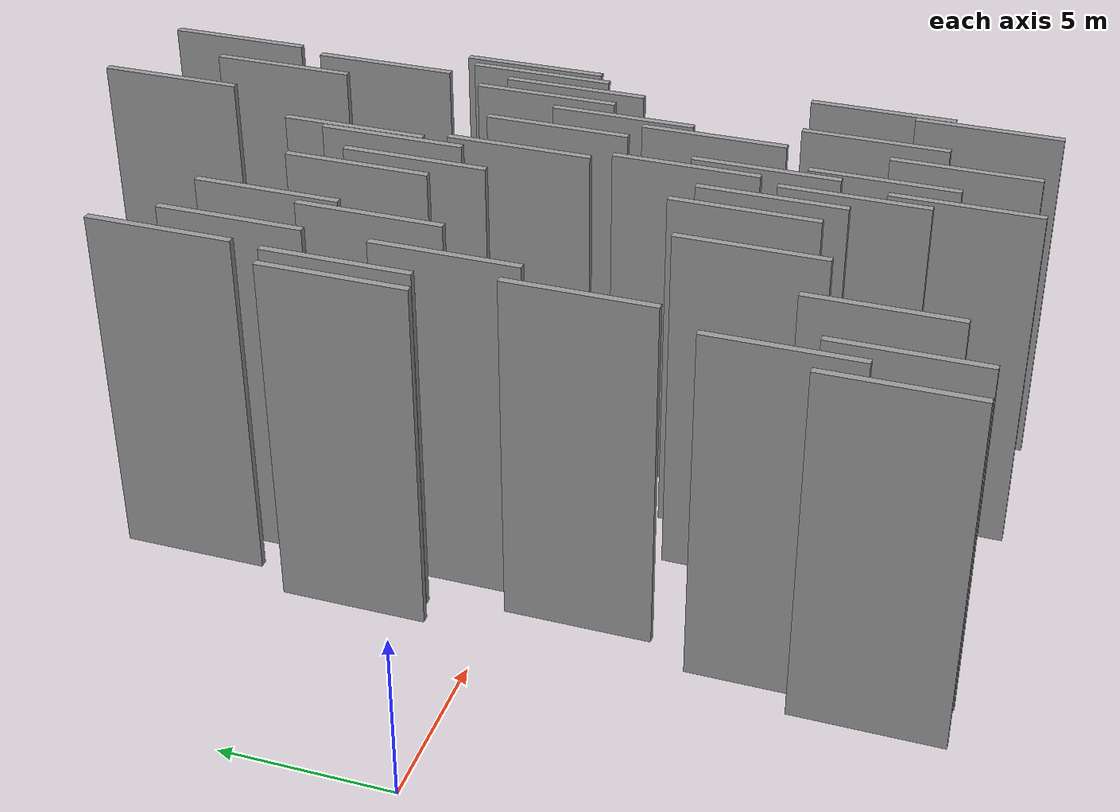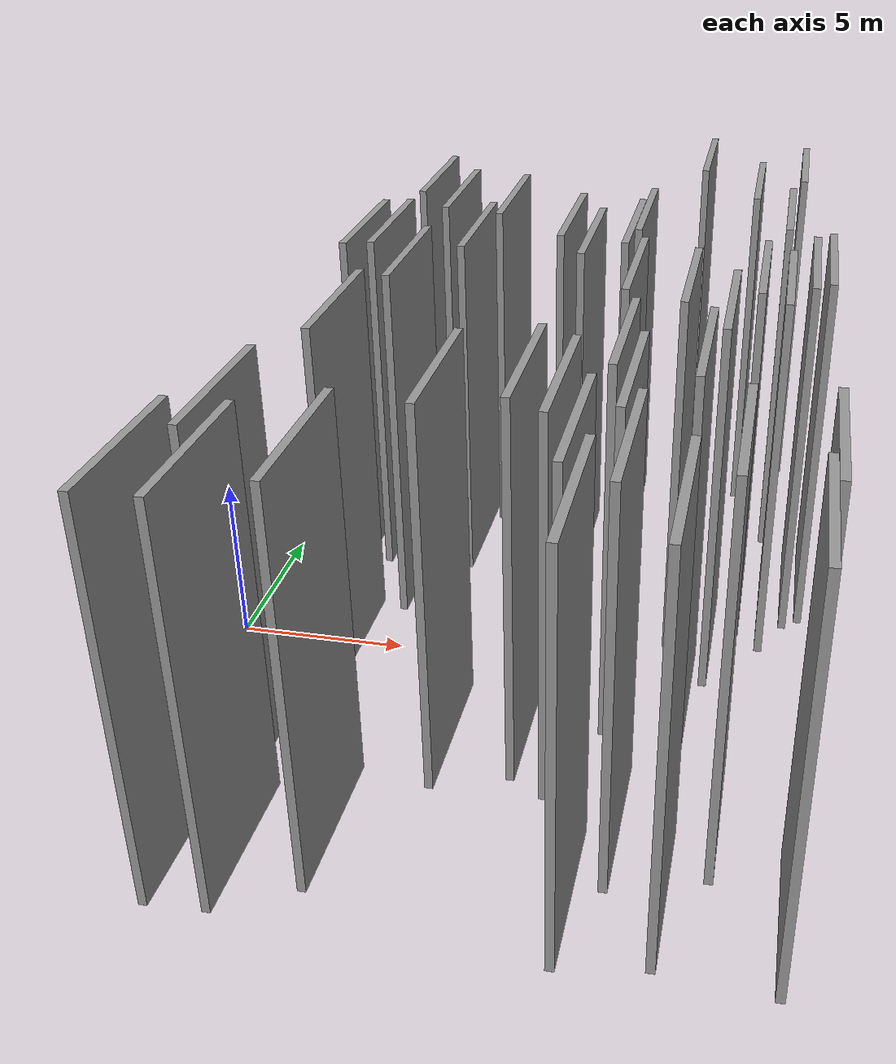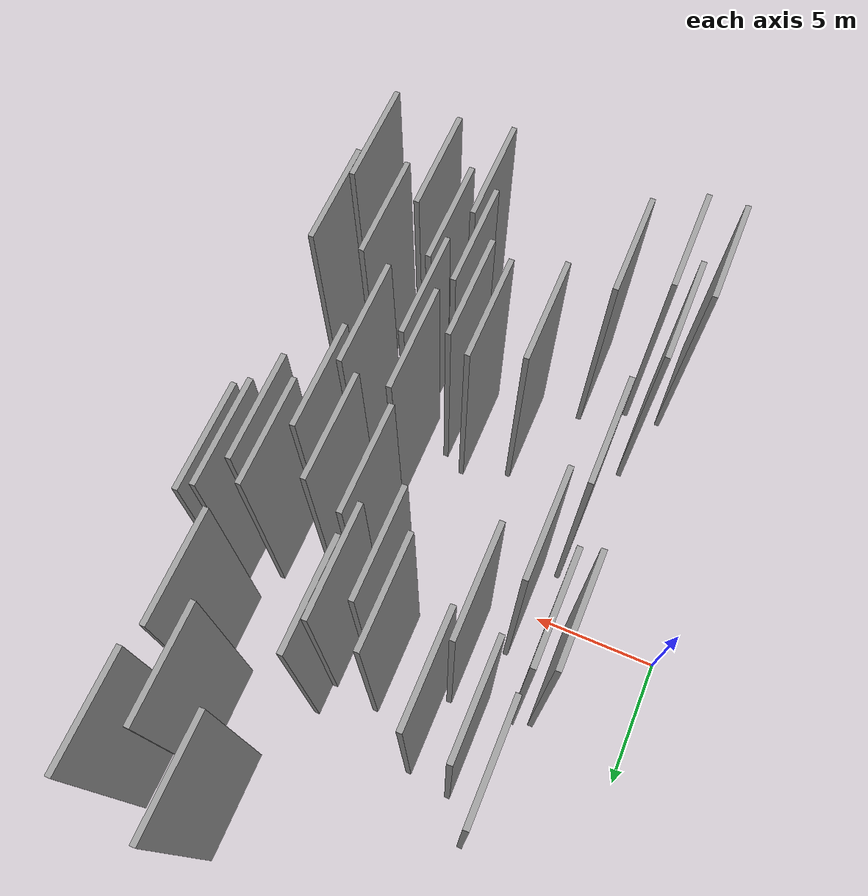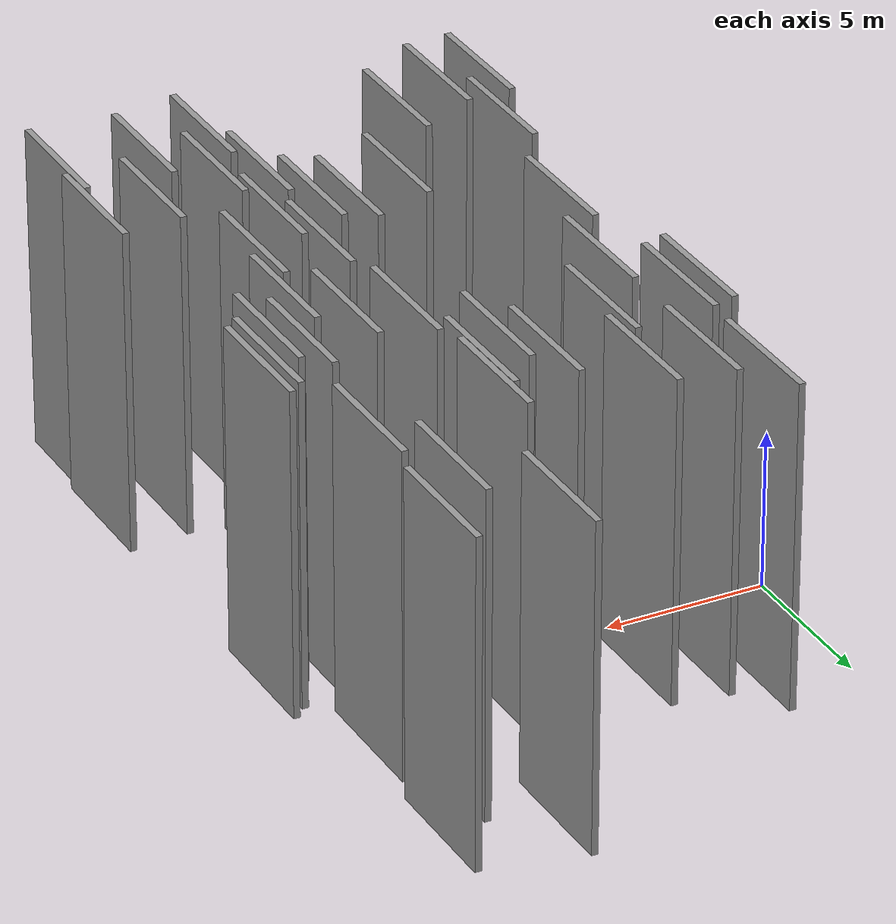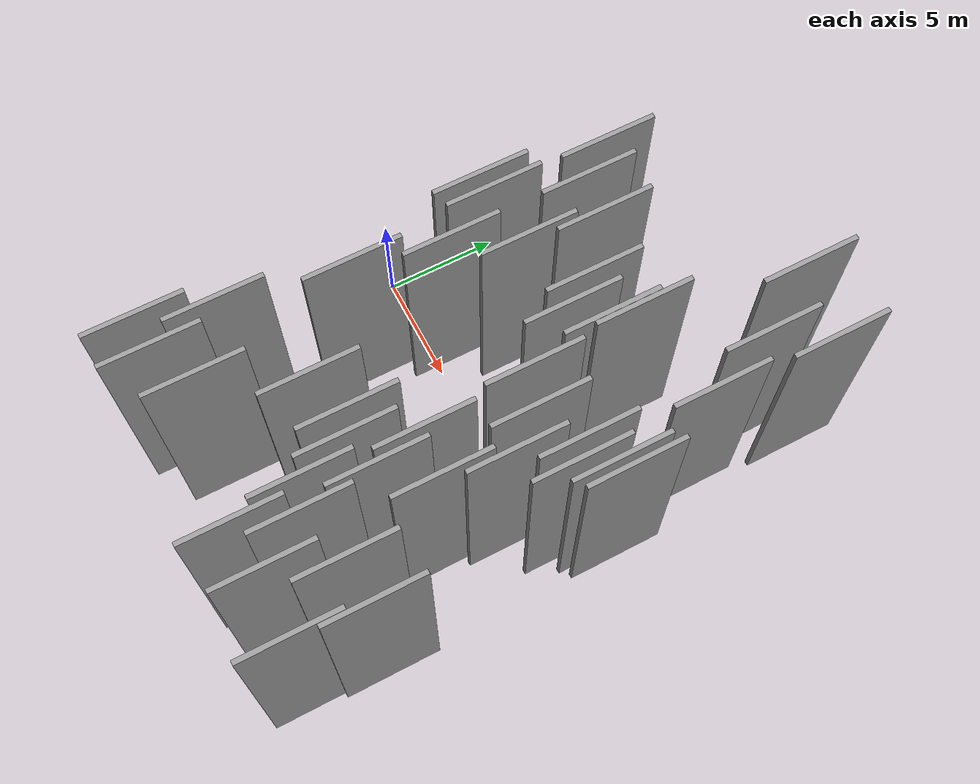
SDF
<sdf version="1.6">
 <world name="default">
  <scene>
   <sky><clouds><speed>12</speed></clouds></sky>
   <ambient>0.4 0.4 0.4 1</ambient>
   <background>0.7 0.7 0.7 1</background>
   <shadows>1</shadows>
  </scene>
  <gravity>0 0 -9.8066</gravity>
  <magnetic_field>6e-06 2.3e-05 -4.2e-05</magnetic_field>
  <physics default="0" name="default_physics" type="ode">
   <ode>
    <solver>
     <type>quick</type>
     <iters>10</iters>
     <sor>1.0</sor>
     <use_dynamic_moi_rescaling>0</use_dynamic_moi_rescaling>
    </solver>
    <constraints>
     <cfm>0</cfm>
     <erp>0.2</erp>
     <contact_max_correcting_vel>100</contact_max_correcting_vel>
     <contact_surface_layer>0.001</contact_surface_layer>
    </constraints>
   </ode>
   <max_step_size>0.004</max_step_size>
   <real_time_factor>1</real_time_factor>
   <real_time_update_rate>250</real_time_update_rate>
  </physics>
  <light name="sun" type="directional">
   <pose>0 0 10 0 0 0</pose>
   <diffuse>0.8 0.8 0.8 1</diffuse>
   <specular>0.2 0.2 0.2 1</specular>
   <attenuation>
    <range>1000</range>
    <constant>0.9</constant>
    <linear>0.01</linear>
    <quadratic>0.001</quadratic>
   </attenuation>
   <direction>-0.5 0.1 -0.9</direction>
  </light>
  <model name="grey_wall_1">
   <static>1</static>
   <pose>3.7994 2.6363 2.5 0.000000 0.000000 1.570796</pose>
   <link name="link">
    <pose>0 0 5.00 0 0 0</pose>
    <collision name="collision"><geometry><box><size>4.00 0.2 10.00</size></box></geometry></collision>
    <visual name="visual">
     <cast_shadows>0</cast_shadows>
     <geometry><box><size>4.00 0.2 10.00</size></box></geometry>
     <material>
      <script>
       <uri>model://grey_wall/materials/scripts</uri>
       <uri>model://grey_wall/materials/textures</uri>
       <name>vrc/grey_wall</name>
      </script>
     </material>
    </visual>
   </link>
  </model>
  <model name="grey_wall_2">
   <static>1</static>
   <pose>15.5786 0.3871 2.5 0.000000 0.000000 1.570796</pose>
   <link name="link">
    <pose>0 0 5.00 0 0 0</pose>
    <collision name="collision"><geometry><box><size>4.00 0.2 10.00</size></box></geometry></collision>
    <visual name="visual">
     <cast_shadows>0</cast_shadows>
     <geometry><box><size>4.00 0.2 10.00</size></box></geometry>
     <material>
      <script>
       <uri>model://grey_wall/materials/scripts</uri>
       <uri>model://grey_wall/materials/textures</uri>
       <name>vrc/grey_wall</name>
      </script>
     </material>
    </visual>
   </link>
  </model>
  <model name="grey_wall_3">
   <static>1</static>
   <pose>10.0864 -5.8652 2.5 0.000000 0.000000 1.570796</pose>
   <link name="link">
    <pose>0 0 5.00 0 0 0</pose>
    <collision name="collision"><geometry><box><size>4.00 0.2 10.00</size></box></geometry></collision>
    <visual name="visual">
     <cast_shadows>0</cast_shadows>
     <geometry><box><size>4.00 0.2 10.00</size></box></geometry>
     <material>
      <script>
       <uri>model://grey_wall/materials/scripts</uri>
       <uri>model://grey_wall/materials/textures</uri>
       <name>vrc/grey_wall</name>
      </script>
     </material>
    </visual>
   </link>
  </model>
  <model name="grey_wall_4">
   <static>1</static>
   <pose>16.6024 1.9470 2.5 0.000000 0.000000 1.570796</pose>
   <link name="link">
    <pose>0 0 5.00 0 0 0</pose>
    <collision name="collision"><geometry><box><size>4.00 0.2 10.00</size></box></geometry></collision>
    <visual name="visual">
     <cast_shadows>0</cast_shadows>
     <geometry><box><size>4.00 0.2 10.00</size></box></geometry>
     <material>
      <script>
       <uri>model://grey_wall/materials/scripts</uri>
       <uri>model://grey_wall/materials/textures</uri>
       <name>vrc/grey_wall</name>
      </script>
     </material>
    </visual>
   </link>
  </model>
  <model name="grey_wall_5">
   <static>1</static>
   <pose>16.5574 -11.0055 2.5 0.000000 0.000000 1.570796</pose>
   <link name="link">
    <pose>0 0 5.00 0 0 0</pose>
    <collision name="collision"><geometry><box><size>4.00 0.2 10.00</size></box></geometry></collision>
    <visual name="visual">
     <cast_shadows>0</cast_shadows>
     <geometry><box><size>4.00 0.2 10.00</size></box></geometry>
     <material>
      <script>
       <uri>model://grey_wall/materials/scripts</uri>
       <uri>model://grey_wall/materials/textures</uri>
       <name>vrc/grey_wall</name>
      </script>
     </material>
    </visual>
   </link>
  </model>
  <model name="grey_wall_6">
   <static>1</static>
   <pose>5.6408 0.4742 2.5 0.000000 0.000000 1.570796</pose>
   <link name="link">
    <pose>0 0 5.00 0 0 0</pose>
    <collision name="collision"><geometry><box><size>4.00 0.2 10.00</size></box></geometry></collision>
    <visual name="visual">
     <cast_shadows>0</cast_shadows>
     <geometry><box><size>4.00 0.2 10.00</size></box></geometry>
     <material>
      <script>
       <uri>model://grey_wall/materials/scripts</uri>
       <uri>model://grey_wall/materials/textures</uri>
       <name>vrc/grey_wall</name>
      </script>
     </material>
    </visual>
   </link>
  </model>
  <model name="grey_wall_7">
   <static>1</static>
   <pose>11.9720 -3.8224 2.5 0.000000 0.000000 1.570796</pose>
   <link name="link">
    <pose>0 0 5.00 0 0 0</pose>
    <collision name="collision"><geometry><box><size>4.00 0.2 10.00</size></box></geometry></collision>
    <visual name="visual">
     <cast_shadows>0</cast_shadows>
     <geometry><box><size>4.00 0.2 10.00</size></box></geometry>
     <material>
      <script>
       <uri>model://grey_wall/materials/scripts</uri>
       <uri>model://grey_wall/materials/textures</uri>
       <name>vrc/grey_wall</name>
      </script>
     </material>
    </visual>
   </link>
  </model>
  <model name="grey_wall_8">
   <static>1</static>
   <pose>14.9060 1.0273 2.5 0.000000 0.000000 1.570796</pose>
   <link name="link">
    <pose>0 0 5.00 0 0 0</pose>
    <collision name="collision"><geometry><box><size>4.00 0.2 10.00</size></box></geometry></collision>
    <visual name="visual">
     <cast_shadows>0</cast_shadows>
     <geometry><box><size>4.00 0.2 10.00</size></box></geometry>
     <material>
      <script>
       <uri>model://grey_wall/materials/scripts</uri>
       <uri>model://grey_wall/materials/textures</uri>
       <name>vrc/grey_wall</name>
      </script>
     </material>
    </visual>
   </link>
  </model>
  <model name="grey_wall_9">
   <static>1</static>
   <pose>12.4231 -5.8423 2.5 0.000000 0.000000 1.570796</pose>
   <link name="link">
    <pose>0 0 5.00 0 0 0</pose>
    <collision name="collision"><geometry><box><size>4.00 0.2 10.00</size></box></geometry></collision>
    <visual name="visual">
     <cast_shadows>0</cast_shadows>
     <geometry><box><size>4.00 0.2 10.00</size></box></geometry>
     <material>
      <script>
       <uri>model://grey_wall/materials/scripts</uri>
       <uri>model://grey_wall/materials/textures</uri>
       <name>vrc/grey_wall</name>
      </script>
     </material>
    </visual>
   </link>
  </model>
  <model name="grey_wall_10">
   <static>1</static>
   <pose>4.6987 -11.0254 2.5 0.000000 0.000000 1.570796</pose>
   <link name="link">
    <pose>0 0 5.00 0 0 0</pose>
    <collision name="collision"><geometry><box><size>4.00 0.2 10.00</size></box></geometry></collision>
    <visual name="visual">
     <cast_shadows>0</cast_shadows>
     <geometry><box><size>4.00 0.2 10.00</size></box></geometry>
     <material>
      <script>
       <uri>model://grey_wall/materials/scripts</uri>
       <uri>model://grey_wall/materials/textures</uri>
       <name>vrc/grey_wall</name>
      </script>
     </material>
    </visual>
   </link>
  </model>
  <model name="grey_wall_11">
   <static>1</static>
   <pose>15.4312 6.0765 2.5 0.000000 0.000000 1.570796</pose>
   <link name="link">
    <pose>0 0 5.00 0 0 0</pose>
    <collision name="collision"><geometry><box><size>4.00 0.2 10.00</size></box></geometry></collision>
    <visual name="visual">
     <cast_shadows>0</cast_shadows>
     <geometry><box><size>4.00 0.2 10.00</size></box></geometry>
     <material>
      <script>
       <uri>model://grey_wall/materials/scripts</uri>
       <uri>model://grey_wall/materials/textures</uri>
       <name>vrc/grey_wall</name>
      </script>
     </material>
    </visual>
   </link>
  </model>
  <model name="grey_wall_12">
   <static>1</static>
   <pose>14.2291 -1.4063 2.5 0.000000 0.000000 1.570796</pose>
   <link name="link">
    <pose>0 0 5.00 0 0 0</pose>
    <collision name="collision"><geometry><box><size>4.00 0.2 10.00</size></box></geometry></collision>
    <visual name="visual">
     <cast_shadows>0</cast_shadows>
     <geometry><box><size>4.00 0.2 10.00</size></box></geometry>
     <material>
      <script>
       <uri>model://grey_wall/materials/scripts</uri>
       <uri>model://grey_wall/materials/textures</uri>
       <name>vrc/grey_wall</name>
      </script>
     </material>
    </visual>
   </link>
  </model>
  <model name="grey_wall_13">
   <static>1</static>
   <pose>4.0524 -8.2985 2.5 0.000000 0.000000 1.570796</pose>
   <link name="link">
    <pose>0 0 5.00 0 0 0</pose>
    <collision name="collision"><geometry><box><size>4.00 0.2 10.00</size></box></geometry></collision>
    <visual name="visual">
     <cast_shadows>0</cast_shadows>
     <geometry><box><size>4.00 0.2 10.00</size></box></geometry>
     <material>
      <script>
       <uri>model://grey_wall/materials/scripts</uri>
       <uri>model://grey_wall/materials/textures</uri>
       <name>vrc/grey_wall</name>
      </script>
     </material>
    </visual>
   </link>
  </model>
  <model name="grey_wall_14">
   <static>1</static>
   <pose>6.4614 -10.0986 2.5 0.000000 0.000000 1.570796</pose>
   <link name="link">
    <pose>0 0 5.00 0 0 0</pose>
    <collision name="collision"><geometry><box><size>4.00 0.2 10.00</size></box></geometry></collision>
    <visual name="visual">
     <cast_shadows>0</cast_shadows>
     <geometry><box><size>4.00 0.2 10.00</size></box></geometry>
     <material>
      <script>
       <uri>model://grey_wall/materials/scripts</uri>
       <uri>model://grey_wall/materials/textures</uri>
       <name>vrc/grey_wall</name>
      </script>
     </material>
    </visual>
   </link>
  </model>
  <model name="grey_wall_15">
   <static>1</static>
   <pose>14.9442 -8.2278 2.5 0.000000 0.000000 1.570796</pose>
   <link name="link">
    <pose>0 0 5.00 0 0 0</pose>
    <collision name="collision"><geometry><box><size>4.00 0.2 10.00</size></box></geometry></collision>
    <visual name="visual">
     <cast_shadows>0</cast_shadows>
     <geometry><box><size>4.00 0.2 10.00</size></box></geometry>
     <material>
      <script>
       <uri>model://grey_wall/materials/scripts</uri>
       <uri>model://grey_wall/materials/textures</uri>
       <name>vrc/grey_wall</name>
      </script>
     </material>
    </visual>
   </link>
  </model>
  <model name="grey_wall_16">
   <static>1</static>
   <pose>11.6333 0.6828 2.5 0.000000 0.000000 1.570796</pose>
   <link name="link">
    <pose>0 0 5.00 0 0 0</pose>
    <collision name="collision"><geometry><box><size>4.00 0.2 10.00</size></box></geometry></collision>
    <visual name="visual">
     <cast_shadows>0</cast_shadows>
     <geometry><box><size>4.00 0.2 10.00</size></box></geometry>
     <material>
      <script>
       <uri>model://grey_wall/materials/scripts</uri>
       <uri>model://grey_wall/materials/textures</uri>
       <name>vrc/grey_wall</name>
      </script>
     </material>
    </visual>
   </link>
  </model>
  <model name="grey_wall_17">
   <static>1</static>
   <pose>5.6771 6.2340 2.5 0.000000 0.000000 1.570796</pose>
   <link name="link">
    <pose>0 0 5.00 0 0 0</pose>
    <collision name="collision"><geometry><box><size>4.00 0.2 10.00</size></box></geometry></collision>
    <visual name="visual">
     <cast_shadows>0</cast_shadows>
     <geometry><box><size>4.00 0.2 10.00</size></box></geometry>
     <material>
      <script>
       <uri>model://grey_wall/materials/scripts</uri>
       <uri>model://grey_wall/materials/textures</uri>
       <name>vrc/grey_wall</name>
      </script>
     </material>
    </visual>
   </link>
  </model>
  <model name="grey_wall_18">
   <static>1</static>
   <pose>11.6100 -8.3505 2.5 0.000000 0.000000 1.570796</pose>
   <link name="link">
    <pose>0 0 5.00 0 0 0</pose>
    <collision name="collision"><geometry><box><size>4.00 0.2 10.00</size></box></geometry></collision>
    <visual name="visual">
     <cast_shadows>0</cast_shadows>
     <geometry><box><size>4.00 0.2 10.00</size></box></geometry>
     <material>
      <script>
       <uri>model://grey_wall/materials/scripts</uri>
       <uri>model://grey_wall/materials/textures</uri>
       <name>vrc/grey_wall</name>
      </script>
     </material>
    </visual>
   </link>
  </model>
  <model name="grey_wall_19">
   <static>1</static>
   <pose>9.3649 4.3703 2.5 0.000000 0.000000 1.570796</pose>
   <link name="link">
    <pose>0 0 5.00 0 0 0</pose>
    <collision name="collision"><geometry><box><size>4.00 0.2 10.00</size></box></geometry></collision>
    <visual name="visual">
     <cast_shadows>0</cast_shadows>
     <geometry><box><size>4.00 0.2 10.00</size></box></geometry>
     <material>
      <script>
       <uri>model://grey_wall/materials/scripts</uri>
       <uri>model://grey_wall/materials/textures</uri>
       <name>vrc/grey_wall</name>
      </script>
     </material>
    </visual>
   </link>
  </model>
  <model name="grey_wall_20">
   <static>1</static>
   <pose>6.9376 2.9967 2.5 0.000000 0.000000 1.570796</pose>
   <link name="link">
    <pose>0 0 5.00 0 0 0</pose>
    <collision name="collision"><geometry><box><size>4.00 0.2 10.00</size></box></geometry></collision>
    <visual name="visual">
     <cast_shadows>0</cast_shadows>
     <geometry><box><size>4.00 0.2 10.00</size></box></geometry>
     <material>
      <script>
       <uri>model://grey_wall/materials/scripts</uri>
       <uri>model://grey_wall/materials/textures</uri>
       <name>vrc/grey_wall</name>
      </script>
     </material>
    </visual>
   </link>
  </model>
  <model name="grey_wall_21">
   <static>1</static>
   <pose>16.1842 1.6033 2.5 0.000000 0.000000 1.570796</pose>
   <link name="link">
    <pose>0 0 5.00 0 0 0</pose>
    <collision name="collision"><geometry><box><size>4.00 0.2 10.00</size></box></geometry></collision>
    <visual name="visual">
     <cast_shadows>0</cast_shadows>
     <geometry><box><size>4.00 0.2 10.00</size></box></geometry>
     <material>
      <script>
       <uri>model://grey_wall/materials/scripts</uri>
       <uri>model://grey_wall/materials/textures</uri>
       <name>vrc/grey_wall</name>
      </script>
     </material>
    </visual>
   </link>
  </model>
  <model name="grey_wall_22">
   <static>1</static>
   <pose>12.7036 11.4861 2.5 0.000000 0.000000 1.570796</pose>
   <link name="link">
    <pose>0 0 5.00 0 0 0</pose>
    <collision name="collision"><geometry><box><size>4.00 0.2 10.00</size></box></geometry></collision>
    <visual name="visual">
     <cast_shadows>0</cast_shadows>
     <geometry><box><size>4.00 0.2 10.00</size></box></geometry>
     <material>
      <script>
       <uri>model://grey_wall/materials/scripts</uri>
       <uri>model://grey_wall/materials/textures</uri>
       <name>vrc/grey_wall</name>
      </script>
     </material>
    </visual>
   </link>
  </model>
  <model name="grey_wall_23">
   <static>1</static>
   <pose>16.7609 -8.0684 2.5 0.000000 0.000000 1.570796</pose>
   <link name="link">
    <pose>0 0 5.00 0 0 0</pose>
    <collision name="collision"><geometry><box><size>4.00 0.2 10.00</size></box></geometry></collision>
    <visual name="visual">
     <cast_shadows>0</cast_shadows>
     <geometry><box><size>4.00 0.2 10.00</size></box></geometry>
     <material>
      <script>
       <uri>model://grey_wall/materials/scripts</uri>
       <uri>model://grey_wall/materials/textures</uri>
       <name>vrc/grey_wall</name>
      </script>
     </material>
    </visual>
   </link>
  </model>
  <model name="grey_wall_24">
   <static>1</static>
   <pose>10.1370 3.0564 2.5 0.000000 0.000000 1.570796</pose>
   <link name="link">
    <pose>0 0 5.00 0 0 0</pose>
    <collision name="collision"><geometry><box><size>4.00 0.2 10.00</size></box></geometry></collision>
    <visual name="visual">
     <cast_shadows>0</cast_shadows>
     <geometry><box><size>4.00 0.2 10.00</size></box></geometry>
     <material>
      <script>
       <uri>model://grey_wall/materials/scripts</uri>
       <uri>model://grey_wall/materials/textures</uri>
       <name>vrc/grey_wall</name>
      </script>
     </material>
    </visual>
   </link>
  </model>
  <model name="grey_wall_25">
   <static>1</static>
   <pose>4.8834 -3.1926 2.5 0.000000 0.000000 1.570796</pose>
   <link name="link">
    <pose>0 0 5.00 0 0 0</pose>
    <collision name="collision"><geometry><box><size>4.00 0.2 10.00</size></box></geometry></collision>
    <visual name="visual">
     <cast_shadows>0</cast_shadows>
     <geometry><box><size>4.00 0.2 10.00</size></box></geometry>
     <material>
      <script>
       <uri>model://grey_wall/materials/scripts</uri>
       <uri>model://grey_wall/materials/textures</uri>
       <name>vrc/grey_wall</name>
      </script>
     </material>
    </visual>
   </link>
  </model>
  <model name="grey_wall_26">
   <static>1</static>
   <pose>12.7527 -8.8900 2.5 0.000000 0.000000 1.570796</pose>
   <link name="link">
    <pose>0 0 5.00 0 0 0</pose>
    <collision name="collision"><geometry><box><size>4.00 0.2 10.00</size></box></geometry></collision>
    <visual name="visual">
     <cast_shadows>0</cast_shadows>
     <geometry><box><size>4.00 0.2 10.00</size></box></geometry>
     <material>
      <script>
       <uri>model://grey_wall/materials/scripts</uri>
       <uri>model://grey_wall/materials/textures</uri>
       <name>vrc/grey_wall</name>
      </script>
     </material>
    </visual>
   </link>
  </model>
  <model name="grey_wall_27">
   <static>1</static>
   <pose>14.0019 -10.7926 2.5 0.000000 0.000000 1.570796</pose>
   <link name="link">
    <pose>0 0 5.00 0 0 0</pose>
    <collision name="collision"><geometry><box><size>4.00 0.2 10.00</size></box></geometry></collision>
    <visual name="visual">
     <cast_shadows>0</cast_shadows>
     <geometry><box><size>4.00 0.2 10.00</size></box></geometry>
     <material>
      <script>
       <uri>model://grey_wall/materials/scripts</uri>
       <uri>model://grey_wall/materials/textures</uri>
       <name>vrc/grey_wall</name>
      </script>
     </material>
    </visual>
   </link>
  </model>
  <model name="grey_wall_28">
   <static>1</static>
   <pose>14.4186 8.8065 2.5 0.000000 0.000000 1.570796</pose>
   <link name="link">
    <pose>0 0 5.00 0 0 0</pose>
    <collision name="collision"><geometry><box><size>4.00 0.2 10.00</size></box></geometry></collision>
    <visual name="visual">
     <cast_shadows>0</cast_shadows>
     <geometry><box><size>4.00 0.2 10.00</size></box></geometry>
     <material>
      <script>
       <uri>model://grey_wall/materials/scripts</uri>
       <uri>model://grey_wall/materials/textures</uri>
       <name>vrc/grey_wall</name>
      </script>
     </material>
    </visual>
   </link>
  </model>
  <model name="grey_wall_29">
   <static>1</static>
   <pose>11.1621 4.1066 2.5 0.000000 0.000000 1.570796</pose>
   <link name="link">
    <pose>0 0 5.00 0 0 0</pose>
    <collision name="collision"><geometry><box><size>4.00 0.2 10.00</size></box></geometry></collision>
    <visual name="visual">
     <cast_shadows>0</cast_shadows>
     <geometry><box><size>4.00 0.2 10.00</size></box></geometry>
     <material>
      <script>
       <uri>model://grey_wall/materials/scripts</uri>
       <uri>model://grey_wall/materials/textures</uri>
       <name>vrc/grey_wall</name>
      </script>
     </material>
    </visual>
   </link>
  </model>
  <model name="grey_wall_30">
   <static>1</static>
   <pose>13.1247 0.1065 2.5 0.000000 0.000000 1.570796</pose>
   <link name="link">
    <pose>0 0 5.00 0 0 0</pose>
    <collision name="collision"><geometry><box><size>4.00 0.2 10.00</size></box></geometry></collision>
    <visual name="visual">
     <cast_shadows>0</cast_shadows>
     <geometry><box><size>4.00 0.2 10.00</size></box></geometry>
     <material>
      <script>
       <uri>model://grey_wall/materials/scripts</uri>
       <uri>model://grey_wall/materials/textures</uri>
       <name>vrc/grey_wall</name>
      </script>
     </material>
    </visual>
   </link>
  </model>
  <model name="grey_wall_31">
   <static>1</static>
   <pose>12.0248 -11.1271 2.5 0.000000 0.000000 1.570796</pose>
   <link name="link">
    <pose>0 0 5.00 0 0 0</pose>
    <collision name="collision"><geometry><box><size>4.00 0.2 10.00</size></box></geometry></collision>
    <visual name="visual">
     <cast_shadows>0</cast_shadows>
     <geometry><box><size>4.00 0.2 10.00</size></box></geometry>
     <material>
      <script>
       <uri>model://grey_wall/materials/scripts</uri>
       <uri>model://grey_wall/materials/textures</uri>
       <name>vrc/grey_wall</name>
      </script>
     </material>
    </visual>
   </link>
  </model>
  <model name="grey_wall_32">
   <static>1</static>
   <pose>7.3145 5.9773 2.5 0.000000 0.000000 1.570796</pose>
   <link name="link">
    <pose>0 0 5.00 0 0 0</pose>
    <collision name="collision"><geometry><box><size>4.00 0.2 10.00</size></box></geometry></collision>
    <visual name="visual">
     <cast_shadows>0</cast_shadows>
     <geometry><box><size>4.00 0.2 10.00</size></box></geometry>
     <material>
      <script>
       <uri>model://grey_wall/materials/scripts</uri>
       <uri>model://grey_wall/materials/textures</uri>
       <name>vrc/grey_wall</name>
      </script>
     </material>
    </visual>
   </link>
  </model>
  <model name="grey_wall_33">
   <static>1</static>
   <pose>11.3689 5.2945 2.5 0.000000 0.000000 1.570796</pose>
   <link name="link">
    <pose>0 0 5.00 0 0 0</pose>
    <collision name="collision"><geometry><box><size>4.00 0.2 10.00</size></box></geometry></collision>
    <visual name="visual">
     <cast_shadows>0</cast_shadows>
     <geometry><box><size>4.00 0.2 10.00</size></box></geometry>
     <material>
      <script>
       <uri>model://grey_wall/materials/scripts</uri>
       <uri>model://grey_wall/materials/textures</uri>
       <name>vrc/grey_wall</name>
      </script>
     </material>
    </visual>
   </link>
  </model>
  <model name="grey_wall_34">
   <static>1</static>
   <pose>10.9620 -6.3574 2.5 0.000000 0.000000 1.570796</pose>
   <link name="link">
    <pose>0 0 5.00 0 0 0</pose>
    <collision name="collision"><geometry><box><size>4.00 0.2 10.00</size></box></geometry></collision>
    <visual name="visual">
     <cast_shadows>0</cast_shadows>
     <geometry><box><size>4.00 0.2 10.00</size></box></geometry>
     <material>
      <script>
       <uri>model://grey_wall/materials/scripts</uri>
       <uri>model://grey_wall/materials/textures</uri>
       <name>vrc/grey_wall</name>
      </script>
     </material>
    </visual>
   </link>
  </model>
  <model name="grey_wall_35">
   <static>1</static>
   <pose>15.7489 10.8149 2.5 0.000000 0.000000 1.570796</pose>
   <link name="link">
    <pose>0 0 5.00 0 0 0</pose>
    <collision name="collision"><geometry><box><size>4.00 0.2 10.00</size></box></geometry></collision>
    <visual name="visual">
     <cast_shadows>0</cast_shadows>
     <geometry><box><size>4.00 0.2 10.00</size></box></geometry>
     <material>
      <script>
       <uri>model://grey_wall/materials/scripts</uri>
       <uri>model://grey_wall/materials/textures</uri>
       <name>vrc/grey_wall</name>
      </script>
     </material>
    </visual>
   </link>
  </model>
  <model name="grey_wall_36">
   <static>1</static>
   <pose>4.4958 2.8458 2.5 0.000000 0.000000 1.570796</pose>
   <link name="link">
    <pose>0 0 5.00 0 0 0</pose>
    <collision name="collision"><geometry><box><size>4.00 0.2 10.00</size></box></geometry></collision>
    <visual name="visual">
     <cast_shadows>0</cast_shadows>
     <geometry><box><size>4.00 0.2 10.00</size></box></geometry>
     <material>
      <script>
       <uri>model://grey_wall/materials/scripts</uri>
       <uri>model://grey_wall/materials/textures</uri>
       <name>vrc/grey_wall</name>
      </script>
     </material>
    </visual>
   </link>
  </model>
  <model name="grey_wall_37">
   <static>1</static>
   <pose>3.3111 -11.0985 2.5 0.000000 0.000000 1.570796</pose>
   <link name="link">
    <pose>0 0 5.00 0 0 0</pose>
    <collision name="collision"><geometry><box><size>4.00 0.2 10.00</size></box></geometry></collision>
    <visual name="visual">
     <cast_shadows>0</cast_shadows>
     <geometry><box><size>4.00 0.2 10.00</size></box></geometry>
     <material>
      <script>
       <uri>model://grey_wall/materials/scripts</uri>
       <uri>model://grey_wall/materials/textures</uri>
       <name>vrc/grey_wall</name>
      </script>
     </material>
    </visual>
   </link>
  </model>
  <model name="grey_wall_38">
   <static>1</static>
   <pose>4.6151 7.6487 2.5 0.000000 0.000000 1.570796</pose>
   <link name="link">
    <pose>0 0 5.00 0 0 0</pose>
    <collision name="collision"><geometry><box><size>4.00 0.2 10.00</size></box></geometry></collision>
    <visual name="visual">
     <cast_shadows>0</cast_shadows>
     <geometry><box><size>4.00 0.2 10.00</size></box></geometry>
     <material>
      <script>
       <uri>model://grey_wall/materials/scripts</uri>
       <uri>model://grey_wall/materials/textures</uri>
       <name>vrc/grey_wall</name>
      </script>
     </material>
    </visual>
   </link>
  </model>
  <model name="grey_wall_39">
   <static>1</static>
   <pose>8.2766 -6.5002 2.5 0.000000 0.000000 1.570796</pose>
   <link name="link">
    <pose>0 0 5.00 0 0 0</pose>
    <collision name="collision"><geometry><box><size>4.00 0.2 10.00</size></box></geometry></collision>
    <visual name="visual">
     <cast_shadows>0</cast_shadows>
     <geometry><box><size>4.00 0.2 10.00</size></box></geometry>
     <material>
      <script>
       <uri>model://grey_wall/materials/scripts</uri>
       <uri>model://grey_wall/materials/textures</uri>
       <name>vrc/grey_wall</name>
      </script>
     </material>
    </visual>
   </link>
  </model>
  <model name="grey_wall_40">
   <static>1</static>
   <pose>13.8469 -4.0793 2.5 0.000000 0.000000 1.570796</pose>
   <link name="link">
    <pose>0 0 5.00 0 0 0</pose>
    <collision name="collision"><geometry><box><size>4.00 0.2 10.00</size></box></geometry></collision>
    <visual name="visual">
     <cast_shadows>0</cast_shadows>
     <geometry><box><size>4.00 0.2 10.00</size></box></geometry>
     <material>
      <script>
       <uri>model://grey_wall/materials/scripts</uri>
       <uri>model://grey_wall/materials/textures</uri>
       <name>vrc/grey_wall</name>
      </script>
     </material>
    </visual>
   </link>
  </model>
 </world>
</sdf>
